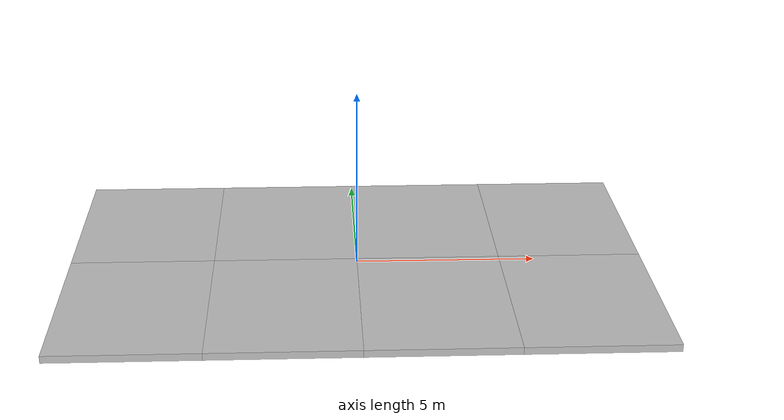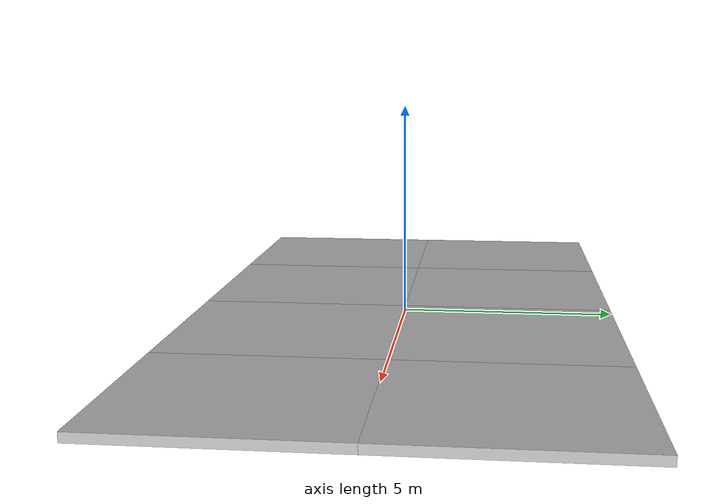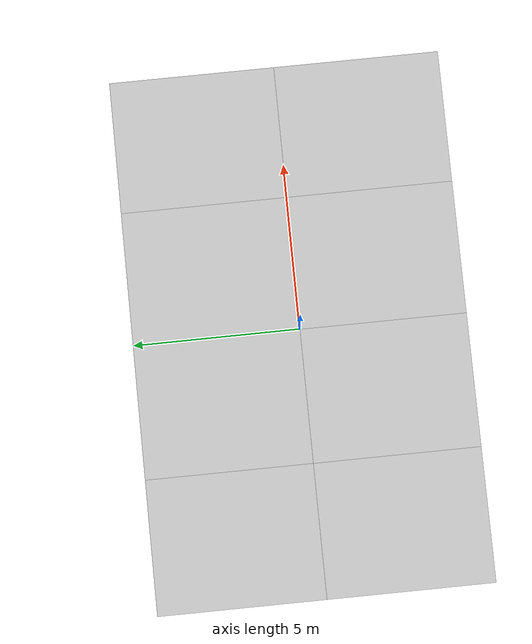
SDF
<?xml version="1.0"?>
<sdf version="1.4">
  <model name="mud_box">
    <static>true</static>
    <link name="link">
      <collision name="collision">
        <geometry>
          <box>
            <size>32 10 0.2</size>
          </box>
        </geometry>
      </collision>
      <visual name="visual_1">
        <pose>-2 2.5 0 0 0 0</pose>
        <cast_shadows>false</cast_shadows>
        <geometry>
          <box>
            <size>4 5 0.2</size>
          </box>
        </geometry>
        <material>
          <script>
            <uri>model://mud_box/materials/scripts</uri>
            <uri>model://mud_box/materials/textures</uri>
            <name>vrc/mud</name>
          </script>
        </material>
      </visual>
      <visual name="visual_2">
        <pose>2 2.5 0 0 0 0</pose>
        <cast_shadows>false</cast_shadows>
        <geometry>
          <box>
            <size>4 5 0.2</size>
          </box>
        </geometry>
        <material>
          <script>
            <uri>model://mud_box/materials/scripts</uri>
            <uri>model://mud_box/materials/textures</uri>
            <name>vrc/mud</name>
          </script>
        </material>
      </visual>
      <visual name="visual_3">
        <pose>2 -2.5 0 0 0 0</pose>
        <cast_shadows>false</cast_shadows>
        <geometry>
          <box>
            <size>4 5 0.2</size>
          </box>
        </geometry>
        <material>
          <script>
            <uri>model://mud_box/materials/scripts</uri>
            <uri>model://mud_box/materials/textures</uri>
            <name>vrc/mud</name>
          </script>
        </material>
      </visual>
      <visual name="visual_4">
        <pose>-2 -2.5 0 0 0 0</pose>
        <cast_shadows>false</cast_shadows>
        <geometry>
          <box>
            <size>4 5 0.2</size>
          </box>
        </geometry>
        <material>
          <script>
            <uri>model://mud_box/materials/scripts</uri>
            <uri>model://mud_box/materials/textures</uri>
            <name>vrc/mud</name>
          </script>
        </material>
      </visual>

      <visual name="visual_5">
        <pose>-6 2.5 0 0 0 0</pose>
        <cast_shadows>false</cast_shadows>
        <geometry>
          <box>
            <size>4 5 0.2</size>
          </box>
        </geometry>
        <material>
          <script>
            <uri>model://mud_box/materials/scripts</uri>
            <uri>model://mud_box/materials/textures</uri>
            <name>vrc/mud</name>
          </script>
        </material>
      </visual>
      <visual name="visual_6">
        <pose>6 2.5 0 0 0 0</pose>
        <cast_shadows>false</cast_shadows>
        <geometry>
          <box>
            <size>4 5 0.2</size>
          </box>
        </geometry>
        <material>
          <script>
            <uri>model://mud_box/materials/scripts</uri>
            <uri>model://mud_box/materials/textures</uri>
            <name>vrc/mud</name>
          </script>
        </material>
      </visual>
      <visual name="visual_7">
        <pose>6 -2.5 0 0 0 0</pose>
        <cast_shadows>false</cast_shadows>
        <geometry>
          <box>
            <size>4 5 0.2</size>
          </box>
        </geometry>
        <material>
          <script>
            <uri>model://mud_box/materials/scripts</uri>
            <uri>model://mud_box/materials/textures</uri>
            <name>vrc/mud</name>
          </script>
        </material>
      </visual>
      <visual name="visual_8">
        <pose>-6 -2.5 0 0 0 0</pose>
        <cast_shadows>false</cast_shadows>
        <geometry>
          <box>
            <size>4 5 0.2</size>
          </box>
        </geometry>
        <material>
          <script>
            <uri>model://mud_box/materials/scripts</uri>
            <uri>model://mud_box/materials/textures</uri>
            <name>vrc/mud</name>
          </script>
        </material>
      </visual>
    </link>
  </model>
</sdf>
